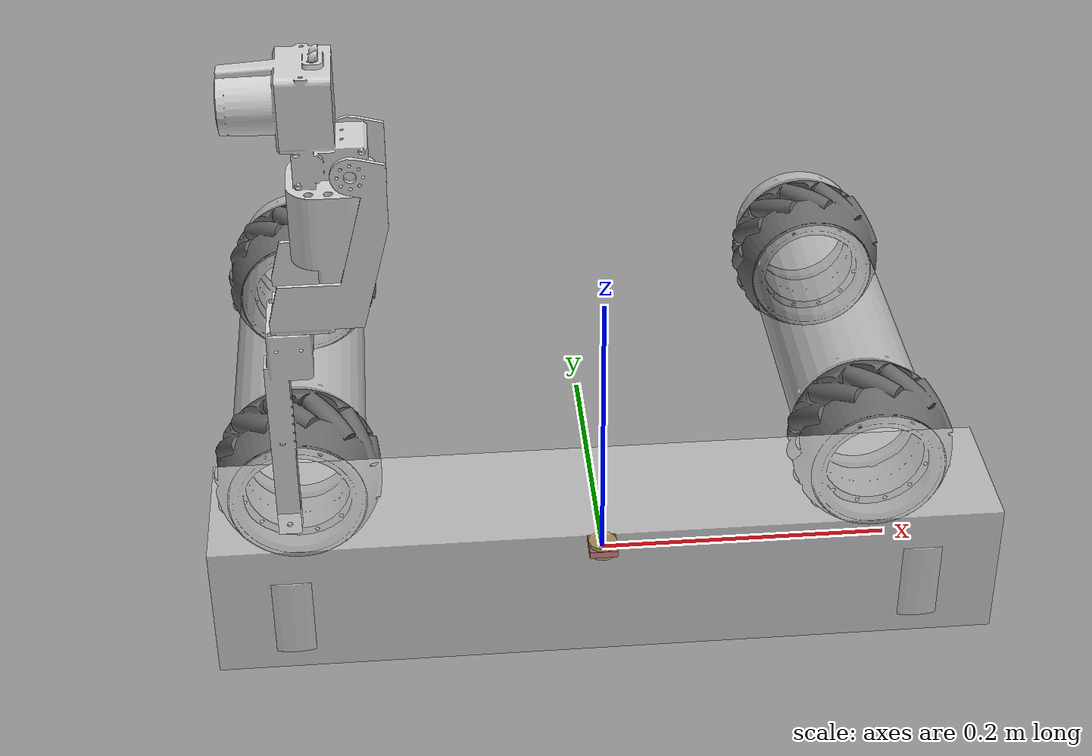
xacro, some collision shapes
<?xml version="1.0"?>
<robot xmlns:xacro="http://www.ros.org/wiki/xacro" name="mirrax">

	<!-- The following included files set up definitions of parts of the robot body -->
	<xacro:include filename="$(find mirrax_description)/urdfs/common.xacro"/>
	<xacro:include filename="$(find mirrax_description)/urdfs/materials.xacro"/>
	<!-- Base -->
	<xacro:include filename="$(find mirrax_description)/urdfs/base/base_float.xacro"/>

	<!-- Legs -->
	<xacro:include filename="$(find mirrax_description)/urdfs/leg/leg.xacro"/>

	<!-- Arms -->
	<xacro:include filename="$(find mirrax_description)/urdfs/arm/arm.xacro"/>
	<xacro:include filename="$(find mirrax_description)/urdfs/arm/linear_actuator.xacro"/>

	<!-- Sensors -->
	<xacro:include filename="$(find mirrax_description)/urdfs/sensors/sensors.xacro"/>

	<!-- generic simulator_gazebo plugins for starting mechanism control, ros time -->
	<xacro:include filename="$(find mirrax_description)/robots/gazebo.xacro"/>

	<!-- Utilise macros to build robot -->

	<!-- robot body -->
	<xacro:RobotBase name="base_link">
		<origin xyz="0 0 0" rpy="0 0 0"/>
	</xacro:RobotBase>

	<!-- robot legs -->
	<xacro:RobotLeg
		name="back"
		joint_name="joint_5"
		parent="base_link"
		joint_ulim="${back_pivot_joint_ulim}"
		joint_llim="${back_pivot_joint_llim}"
		wheel_num_l="1"
		wheel_num_r="2">
		<origin xyz="${-base_x/2} ${base_y/2} ${base_z_offset}" rpy="0 0 0"/>
	</xacro:RobotLeg>

	<xacro:RobotLeg
		name="front"
		joint_name="joint_6"
		parent="base_link"
		joint_ulim="${front_pivot_joint_ulim}"
		joint_llim="${front_pivot_joint_llim}"
		wheel_num_l="4"
		wheel_num_r="3">
		<origin xyz="${base_x/2} ${base_y/2} ${base_z_offset}" rpy="0 0 0"/>
	</xacro:RobotLeg>

	<!-- arm components -->
	<xacro:RobotArm
		name="arm"
		parent="base_link">
		<origin xyz="${-base_x/2} ${base_y/2} ${base_z_offset}" rpy="0 0 ${pi/2}"/>
	</xacro:RobotArm>

	<!-- Closed-kinematic chain of arm; excluded here for simplicity -->

	<!-- Sensors -->
	<xacro:IMU
		parent="base_link"
		imu_name="imu"
		imu_topic="/imu"
		update_rate="100">
		<origin xyz="0.0 0.0 0.0" rpy="0 0 0"/>
	</xacro:IMU>

	<xacro:LIDAR
		parent="laser"
		lidar_name="urg_lidar"
		lidar_topic="lidar/data"
		update_rate="100">
		<origin xyz="0 0 0" rpy="0 0 0"/>
	</xacro:LIDAR>

</robot>

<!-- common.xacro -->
<robot xmlns:xacro="http://www.ros.org/wiki/xacro" name="mirrax">

	<!-- NOTE: all mass and inertia related properties are inaccurate here -->

	<!-- standard distances -->
	<xacro:property name="base_x" value="0.432"/> 		<!-- distance between front & back  joints -->
	<xacro:property name="base_y" value="0.0"/> 		<!-- distance between left  & right joints -->
	<xacro:property name="base_z" value="0.0"/>
	<xacro:property name="base_z_offset" value="-0.0117"/>

	<!--  Joint parameters -->
	<xacro:property name="XM430_damping"   value="0.5" /> 					<!-- real: 0.2 		-->
	<xacro:property name="XM430_effort"    value="2.85" /> 					<!-- real: 2.85 Nm 	-->
	<xacro:property name="XM430_velocity"  value="4.0" />

	<xacro:property name="front_pivot_joint_ulim" value=" 0.1"/>
	<xacro:property name="front_pivot_joint_llim" value="-3.2"/>
	<xacro:property name="back_pivot_joint_ulim"  value=" 3.2"/>
	<xacro:property name="back_pivot_joint_llim"  value="-0.1"/>

	<xacro:property name="wheel_llim" value="${-pi}"/>
	<xacro:property name="wheel_ulim" value="${pi}"/>

	<xacro:property name="wheel_left_offset_x" value="0"/>
	<xacro:property name="wheel_left_offset_y" value="0.4005"/>
	<xacro:property name="wheel_left_offset_z" value="0"/>

	<xacro:property name="wheel_right_offset_x" value="0"/>
	<xacro:property name="wheel_right_offset_y" value="0.1215"/>
	<xacro:property name="wheel_right_offset_z" value="0"/>

	<!-- Wheel Parameters -->
	<xacro:property name="wheel_friction" value="0.0" />	<!-- Not used due to plugin for moving base -->

	<!-- Inertial values -->
	<!-- Base -->
	<xacro:property name="xcom_base" value="-0.0"/>
	<xacro:property name="ycom_base" value="0.0"/>
	<xacro:property name="zcom_base" value="0.0"/>
	<xacro:property name="m_base" 	 value="2.87"/>
	<xacro:property name="ixx_base"  value="${ (m_base/12)*(base_y*base_y + base_z*base_z) } "/>
	<xacro:property name="iyy_base"  value="${ (m_base/12)*(base_x*base_x + base_z*base_z) } "/>
	<xacro:property name="izz_base"  value="${ (m_base/12)*(base_y*base_y + base_x*base_x) } "/>
	<xacro:property name="ixy_base"  value="0.0"/>
	<xacro:property name="ixz_base"  value="0.0"/>
	<xacro:property name="iyz_base"  value="0.0"/>

	<!-- Pivot Links -->
	<xacro:property name="pivot_com_x" value="0"  />
	<xacro:property name="pivot_com_y" value="0.23"  />
	<xacro:property name="pivot_com_z" value="0"  />
	<xacro:property name="pivot_m"     value="0.3" />
	<xacro:property name="pivot_i_xx"  value="${ (pivot_m/2)*0.05*0.05 }"  />
	<xacro:property name="pivot_i_xy"  value="0.0"  />
	<xacro:property name="pivot_i_xz"  value="0.0"  />
	<xacro:property name="pivot_i_yy"  value="${ (pivot_m/12)*(3*0.05**2 + 0.35**2) } "/>
	<xacro:property name="pivot_i_yz"  value="0.0"  />
	<xacro:property name="pivot_i_zz"  value="${ (pivot_m/12)*(3*0.05**2 + 0.35**2) } "/>

	<!-- Wheel assembly -->
	<xacro:property name="wheel_com_x" value="0"  />
	<xacro:property name="wheel_com_y" value="0"  />
	<xacro:property name="wheel_com_z" value="0"  />
	<xacro:property name="wheel_m"     value="1.15" />
	<xacro:property name="wheel_i_xx"  value="${ (wheel_m/12)*(3*0.05**2 + 0.35**2) } "/>
	<xacro:property name="wheel_i_xy"  value="0"  />
	<xacro:property name="wheel_i_xz"  value="0"  />
	<xacro:property name="wheel_i_yy"  value="${ (pivot_m/2)*0.05*0.05 }"  />
	<xacro:property name="wheel_i_yz"  value="0"  />
	<xacro:property name="wheel_i_zz"  value="${ (wheel_m/12)*(3*0.05**2 + 0.35**2) } "/>

	<!-- Arm 1 assembly -->
	<xacro:property name="arm_1_l" value="0.15" />
	<xacro:property name="arm_1_w" value="0.04" />
	<xacro:property name="arm_1_d" value="0.025" />
	<xacro:property name="arm_1_cl" value="0.06" />
	<xacro:property name="arm_1_com_x" value="0.0887"  	/>
	<xacro:property name="arm_1_com_y" value="0"  		/>
	<xacro:property name="arm_1_com_z" value="0"  		/>
	<xacro:property name="arm_1_m"     value="0.076" 	/>
	<xacro:property name="arm_1_xx"  value="0.000025" />
	<xacro:property name="arm_1_xy"  value="0"  		/>
	<xacro:property name="arm_1_xz"  value="0"  		/>
	<xacro:property name="arm_1_yy"  value="0.000105" />
	<xacro:property name="arm_1_yz"  value="0"  		/>
	<xacro:property name="arm_1_zz"  value="0.000117"  />

	<!-- Arm 2 assembly -->
	<xacro:property name="arm_2_l" value="0.15" />
	<xacro:property name="arm_2_w" value="0.04" />
	<xacro:property name="arm_2_d" value="0.025" />
	<xacro:property name="arm_2_cl" value="0.06" />
	<xacro:property name="arm_2_com_x" value="0.0887"  	/>
	<xacro:property name="arm_2_com_y" value="0"  		/>
	<xacro:property name="arm_2_com_z" value="0"  		/>
	<xacro:property name="arm_2_m"     value="0.076" 	/>
	<xacro:property name="arm_2_xx"  value="0.000025" />
	<xacro:property name="arm_2_xy"  value="0"  		/>
	<xacro:property name="arm_2_xz"  value="0"  		/>
	<xacro:property name="arm_2_yy"  value="0.000105" />
	<xacro:property name="arm_2_yz"  value="0"  		/>
	<xacro:property name="arm_2_zz"  value="0.000117"  />

	<!-- Arm 3 assembly -->
	<xacro:property name="arm_3_l" value="0.15" />
	<xacro:property name="arm_3_w" value="0.04" />
	<xacro:property name="arm_3_d" value="0.025" />
	<xacro:property name="arm_3_cl" value="0.06" />
	<xacro:property name="arm_3_com_x" value="0.0887"  	/>
	<xacro:property name="arm_3_com_y" value="0"  		/>
	<xacro:property name="arm_3_com_z" value="0"  		/>
	<xacro:property name="arm_3_m"     value="0.076" 	/>
	<xacro:property name="arm_3_xx"  value="0.000025" />
	<xacro:property name="arm_3_xy"  value="0"  		/>
	<xacro:property name="arm_3_xz"  value="0"  		/>
	<xacro:property name="arm_3_yy"  value="0.000105" />
	<xacro:property name="arm_3_yz"  value="0"  		/>
	<xacro:property name="arm_3_zz"  value="0.000117"  />

  <!-- RGB for links -->
	<xacro:property name="light_grey" value="0.8" />
	<xacro:property name="dark_grey" value="0.1" />
	<xacro:property name="alpha" value="1.0"/>

</robot>

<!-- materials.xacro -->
<robot>

  <material name="black">
    <color rgba="0.0 0.0 0.0 1.0"/>
  </material>

  <material name="blue">
    <color rgba="0.0 0.0 0.8 1.0"/>
  </material>

  <material name="brown">
    <color rgba="${222/255} ${207/255} ${195/255} 1.0"/>
  </material>

  <material name="colli">
    <color rgba="${255/255} ${108/255} ${10/255} 0.7" />
  </material>

  <material name="green">
    <color rgba="0.0 0.8 0.0 1.0"/>
  </material>

  <material name="grey">
    <color rgba="0.2 0.2 0.2 1.0"/>
  </material>

  <material name="grey1">
    <color rgba="${224/255} ${224/255} ${224/255} 1.0"/>
  </material>

  <material name="orange">
    <color rgba="${255/255} ${108/255} ${10/255} 1.0"/>
  </material>

  <material name="red">
    <color rgba="0.8 0.0 0.0 1.0"/>
  </material>

  <material name="transparent">
    <color rgba="0 0 0 0" />
  </material>

  <material name="turquoise">
    <color rgba="0 ${206/255} ${209/255} 1.0" />
  </material>

  <material name="white">
    <color rgba="1.0 1.0 1.0 1.0"/>
  </material>

  <material name="yellow">
    <color rgba="1 1 0 1" />
  </material>

</robot>

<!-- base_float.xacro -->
<robot xmlns:xacro="http://www.ros.org/wiki/xacro" name="mirrax">

	<!-- Things that are needed only for Gazebo (not the physical robot).
			 These include sensor and controller plugin specifications -->
	<xacro:include filename="$(find mirrax_description)/urdfs/base/base.gazebo.xacro"/>

	<!-- ================================ Base ================================ -->

	<xacro:macro name="RobotBase" params="name *origin">
		<!-- Floating base Joint -->
		<joint name="floating_base" type="fixed">
			<axis xyz="0 0 1"/>
			<!-- origin remains zero as body_dummy same dimensions as body -->
			<xacro:insert_block name="origin"/>
			<parent link="floating_base"/>
			<child link="${name}"/>
		</joint>

		<!-- Floating base Link  -->
		<link name="floating_base">
			<visual>
				<geometry>
					<cylinder length="0.01" radius="0.01"/>
				</geometry>
			</visual>
		</link>

		<!-- Base link -->
		<link name="${name}">
			<visual>
				<geometry>
					<mesh filename="package://mirrax_description/meshes/BodyRVIZ.STL"/>
				</geometry>
				<material name="LightGrey">
					<color rgba="${light_grey} ${light_grey} ${light_grey} 0.7"/>
				</material>
			</visual>

			<inertial>
				<origin xyz="${xcom_base} ${ycom_base} ${zcom_base}"/>
				<mass value="${m_base}"/>
				<inertia ixx="${ixx_base}" iyy="${iyy_base}" izz="${izz_base}"
						 ixy="${ixy_base}" ixz="${ixz_base}" iyz="${iyz_base}"/>
			</inertial>

			<collision>
				<origin xyz="0 0 0" rpy="0 0 0"/>
				<geometry>
					<box size="0.54 0.1 0.1"/>
				</geometry>
				<material name="colli"/>
			</collision>
		</link>

		<!-- Extensions -->
		<xacro:base_gazebo name="base_link"/>

	</xacro:macro>

</robot>

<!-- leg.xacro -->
<robot xmlns:xacro="http://www.ros.org/wiki/xacro" name="mirrax">
  <!-- Things that are needed only for Gazebo (not the physical robot). These include sensor and controller plugin specifications -->
  <xacro:include filename="$(find mirrax_description)/urdfs/leg/leg.transmission.xacro"/>
  <xacro:include filename="$(find mirrax_description)/urdfs/leg/leg.gazebo.xacro"/>
  <!-- ================================== Leg ================================== -->
  <!-- The xacro macro contains: pivot and leg link -->
  <xacro:macro name="RobotLeg" params="name joint_name parent joint_ulim joint_llim wheel_num_l wheel_num_r *origin">
    <!-- Joints -->
    <!-- Pivot joint -->
    <joint name="${joint_name}" type="revolute">
      <xacro:insert_block name="origin"/>
      <parent link="${parent}"/>
      <child  link="${name}_leg"/>
      <axis xyz="0 0 1"/>
      <dynamics damping="${XM430_damping}" friction="0" />
      <limit effort="${XM430_effort}" velocity="${XM430_velocity}" lower="${joint_llim}" upper="${joint_ulim}"/>
    </joint>

    <!-- Wheel joint left -->
    <joint name="wheel_${wheel_num_l}" type="continuous">
      <origin xyz="${wheel_left_offset_x} ${wheel_left_offset_y} ${wheel_left_offset_z}" rpy="0 0 0"/>
      <parent link="${name}_leg"/>
      <child  link="wheel_${wheel_num_l}"/>
      <axis xyz="0 1 0 "/>
      <dynamics damping="${XM430_damping}" friction="0" />
      <limit effort="${XM430_effort}" velocity="${XM430_velocity}"/>
    </joint>

    <!-- Wheel joint right -->
    <joint name="wheel_${wheel_num_r}" type="continuous">
      <origin xyz="${wheel_right_offset_x} ${wheel_right_offset_y} ${wheel_right_offset_z}" rpy="0 0 0"/>
      <parent link="${name}_leg"/>
      <child  link="wheel_${wheel_num_r}"/>
      <axis xyz="0 1 0 "/>
      <dynamics damping="${XM430_damping}" friction="0" />
      <limit effort="${XM430_effort}" velocity="${XM430_velocity}"/>
    </joint>

    <!-- Links -->
    <!-- Pivot link -->
    <link name="${name}_leg">
      <visual>
        <geometry>
          <mesh filename="package://mirrax_description/meshes/LegRVIZ.STL" scale="1 1 1"/>
        </geometry>
        <material name="LightGrey">
          <color rgba="${light_grey} ${light_grey} ${light_grey} 0.7"/>
        </material>
      </visual>
      <collision>
        <origin xyz="0 0.28 0" rpy="${pi/2} 0 0 "/>
        <geometry>
          <cylinder length="0.35" radius="0.05"/>
        </geometry>
        <material name="colli"/>
      </collision>
      <inertial>
        <origin xyz="${pivot_com_x} ${pivot_com_y} ${pivot_com_z}" rpy="0 0 ${pi/2}" />
        <mass value="${pivot_m}"/>
        <inertia ixx="${pivot_i_xx}" ixy="${pivot_i_xy}" ixz="${pivot_i_xz}" iyy="${pivot_i_yy}" iyz="${pivot_i_yz}" izz="${pivot_i_zz}"/>
      </inertial>
    </link>

    <!-- Wheel link -->
    <xacro:WheelLink name="${wheel_num_l}"> </xacro:WheelLink>
    <xacro:WheelLink name="${wheel_num_r}"> </xacro:WheelLink>

    <!-- Extensions -->
    <xacro:leg_transmission name="${name}" joint_name="${joint_name}" wheel_num_l="${wheel_num_l}" wheel_num_r="${wheel_num_r}"/>
    <xacro:leg_gazebo name="${name}" joint_name="${joint_name}" wheel_num_l="${wheel_num_l}" wheel_num_r="${wheel_num_r}"/>
  </xacro:macro>

	<!-- The xacro macro contains: wheel link -->
  <xacro:macro name="WheelLink" params="name">
    <link name="wheel_${name}">
      <visual>
        <origin rpy="0 0 0" xyz="0 0 0"/>
        <geometry>
          <mesh filename="package://mirrax_description/meshes/Wheel2RVIZ.STL"/>
        </geometry>
        <material name="DarkGrey">
          <color rgba="0.4 0.4 0.4 1"/>
        </material>
      </visual>
      <collision>
        <origin rpy="${pi/2} 0 0" xyz="0 0 0"/>
        <geometry>
          <cylinder radius="${0.124/2}" length="0.072"/>
        </geometry>
        <material name="colli"/>
      </collision>
      <inertial>
        <origin xyz="${wheel_com_x} ${wheel_com_y} ${wheel_com_z}"/>
        <mass value="${wheel_m}"/>
        <inertia ixx="${wheel_i_xx}" ixy="${wheel_i_xy}" ixz="${wheel_i_xz}" iyy="${wheel_i_yy}" iyz="${wheel_i_yz}" izz="${wheel_i_zz}"/>
      </inertial>
    </link>
  </xacro:macro>
</robot>

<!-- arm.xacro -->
<robot xmlns:xacro="http://www.ros.org/wiki/xacro" name="mirrax">
  <!-- Things that are needed only for Gazebo (not the physical robot). These include sensor and controller plugin specifications -->
  <xacro:include filename="$(find mirrax_description)/urdfs/arm/arm.transmission.xacro"/>
  <xacro:include filename="$(find mirrax_description)/urdfs/arm/arm.gazebo.xacro"/>

  <!-- ================================== Arm ================================== -->
  <xacro:macro name="RobotArm" params="name parent *origin">
    <!-- ========================= Joints ========================= -->
    <!-- Arm Pivot Joint -->
    <joint name="joint_9" type="revolute">
      <axis xyz="0 1 0"/>
      <dynamics damping="${XM430_damping}" friction="0" />
      <limit effort="${XM430_effort}" velocity="${XM430_velocity}" lower="0" upper="1.57"/>
      <parent link="${parent}"/>
      <child link="${name}_1"/>
      <origin xyz="-0.216 0 0.04063" rpy="0 0 0"/>
    </joint>

    <!-- Arm Yaw Joint -->
    <joint name="joint_7" type="revolute">
      <axis xyz="0 0 1"/>
      <dynamics damping="${XM430_damping}" friction="0" />
      <limit effort="${XM430_effort}" velocity="${XM430_velocity}" lower="-3.14" upper="3.14"/>
      <parent link="${name}_1"/>
      <child link="${name}_2"/>
      <origin xyz="0.01049 -0.012 0.166" rpy="0 0 0"/>
    </joint>

    <!-- Arm Pitch Joint -->
    <joint name="joint_8" type="revolute">
      <axis xyz="0 -1 0"/>
      <dynamics damping="${XM430_damping}" friction="0" />
      <limit effort="${XM430_effort}" velocity="${XM430_velocity}" lower="-2.891598911" upper="0"/>
      <parent link="${name}_2"/>
      <child link="${name}_3"/>
      <origin xyz="0.04616 0.012 0.11318" rpy="0 0 0"/>
    </joint>

    <!-- Laser -->
    <joint name="laser_joint" type="fixed">
      <parent link="${name}_3"/>
      <child link="laser"/>
      <origin xyz="-0.05523 0 0.03925" rpy="0 1.5708 -3.1415926 "/>
    </joint>

    <!-- ========================= Links ========================= -->
    <!-- Arm bottom link -->
    <link name="${name}_1">
      <visual>
        <geometry>
          <mesh filename="package://mirrax_description/meshes/arm1RVIZ.STL"/>
        </geometry>
        <material name="LightGrey">
          <color rgba="${light_grey} ${light_grey} ${light_grey} ${alpha}"/>
        </material>
        <origin rpy="0 0 0" xyz="0 0 0"/>
      </visual>
      <collision>
        <origin xyz="0 0 0" rpy="0 0 0"/>
        <geometry>
          <mesh filename="package://mirrax_description/meshes/arm1RVIZ.STL"/>
        </geometry>
        <material name="colli"/>
      </collision>
      <inertial>
        <origin xyz="${arm_1_com_x} ${arm_1_com_y} ${arm_1_com_z}"/>
        <mass value="${arm_1_m}"/>
        <inertia ixx="${arm_1_xx}" ixy="${arm_1_xy}" ixz="${arm_1_xz}" iyy="${arm_1_yy}" iyz="${arm_1_yz}" izz="${arm_1_zz}"/>
      </inertial>
    </link>

    <!-- Arm middle link -->
    <link name="${name}_2">
      <visual>
        <geometry>
          <mesh filename="package://mirrax_description/meshes/arm2RVIZ.STL"/>
        </geometry>
        <material name="LightGrey">
          <color rgba="${light_grey} ${light_grey} ${light_grey} ${alpha}"/>
        </material>
        <origin rpy="0 0 0" xyz="0 0 0"/>
      </visual>
      <collision>
        <origin xyz="0 0 0" rpy="0 0 0"/>
        <geometry>
          <mesh filename="package://mirrax_description/meshes/arm2RVIZ.STL"/>
        </geometry>
        <material name="colli"/>
      </collision>
      <inertial>
        <origin xyz="${arm_2_com_x} ${arm_2_com_y} ${arm_2_com_z}"/>
        <mass value="${arm_2_m}"/>
        <inertia ixx="${arm_2_xx}" ixy="${arm_2_xy}" ixz="${arm_2_xz}" iyy="${arm_2_yy}" iyz="${arm_2_yz}" izz="${arm_2_zz}"/>
      </inertial>
    </link>

    <!-- Arm top link -->
    <link name="${name}_3">
      <visual>
        <geometry>
          <mesh filename="package://mirrax_description/meshes/arm3RVIZ.STL"/>
        </geometry>
        <material name="LightGrey">
          <color rgba="${light_grey} ${light_grey} ${light_grey} ${alpha}"/>
        </material>
        <origin rpy="0 0 0" xyz="0 0 0"/>
      </visual>
      <collision>
        <origin xyz="0 0 0" rpy="0 0 0"/>
        <geometry>
          <mesh filename="package://mirrax_description/meshes/arm3RVIZ.STL"/>
        </geometry>
        <material name="colli"/>
      </collision>
      <inertial>
        <origin xyz="${arm_3_com_x} ${arm_3_com_y} ${arm_3_com_z}"/>
        <mass value="${arm_3_m}"/>
        <inertia ixx="${arm_3_xx}" ixy="${arm_3_xy}" ixz="${arm_3_xz}" iyy="${arm_3_yy}" iyz="${arm_3_yz}" izz="${arm_3_zz}"/>
      </inertial>
    </link>

    <!-- Laser link -->
    <link name="laser"/>

    <!-- ========================= Extensions ========================= -->
    <xacro:arm_gazebo name="${name}"/>
    <xacro:arm_transmission name="${name}"/>
  </xacro:macro>
</robot>

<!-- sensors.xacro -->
<robot xmlns:xacro="http://www.ros.org/wiki/xacro" name="mirrax">
  <xacro:include filename="$(find mirrax_description)/urdfs/sensors/imu.xacro"/>
  <xacro:include filename="$(find mirrax_description)/urdfs/sensors/lidar2D.xacro"/>
  <xacro:include filename="$(find mirrax_description)/urdfs/sensors/rgb_camera.xacro"/>
  <xacro:include filename="$(find mirrax_description)/urdfs/sensors/depth_camera.xacro"/>
</robot>

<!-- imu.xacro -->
<robot xmlns:xacro="http://www.ros.org/wiki/xacro" name="mirrax">

	<!-- #############  IMU Sensor  ############# -->
	<xacro:macro name="IMU" params="parent imu_name imu_topic update_rate *origin">
		<!-- Joint -->
		<joint name="${imu_name}_joint" type="fixed">
			<xacro:insert_block name="origin"/>
			<parent link="${parent}" />
			<child link="${imu_name}_link"/>
		</joint>

		<!-- Link -->
		<link name="${imu_name}_link">
			<inertial>
				<origin xyz="0 0 0"/>
				<mass value="0.010"/>
				<inertia ixx="0.0" iyy="0.0" izz="0.0" ixy="0.0" ixz="0.0" iyz="0.0"/>
			</inertial>
			<visual>
				<origin xyz="0.0 0 0.0" rpy="0 0 0"/>
				<geometry>
					<box size="0.02 0.02 0.005" />
				</geometry>
				<material name="red">
					<color rgba="1 0 0 0.9"/>
				</material>
			</visual>
		</link>

		<gazebo reference="${imu_name}_link">
			<material>Gazebo/Red</material>
			<gravity>true</gravity>
			<sensor name="imu_sensor" type="imu">
				<pose>0 0 0 0 0 0</pose>
				<always_on>true</always_on>
				<update_rate>${update_rate}</update_rate>
				<visualize>true</visualize>
				<topic>__default_topic__</topic>
				<plugin filename="libgazebo_ros_imu_sensor.so" name="imu_plugin">
					<topicName>${imu_topic}</topicName>
					<bodyName>${imu_name}_link</bodyName>
					<frameName>${imu_name}_link</frameName>
					<updateRateHZ>${update_rate}</updateRateHZ>
					<gaussianNoise>0.0</gaussianNoise>
					<xyzOffset>0 0 0</xyzOffset>
					<rpyOffset>0 0 0</rpyOffset>
				</plugin>
			</sensor>
		</gazebo>
	</xacro:macro>

</robot>

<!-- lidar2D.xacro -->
<robot xmlns:xacro="http://www.ros.org/wiki/xacro" name="mirrax">
  <!-- #############  Laser Sensor  ############# -->
  <!-- Noise parameters based on published spec for Hokuyo laser achieving "+-30mm" accuracy at range < 10m. -->
  <!-- A mean of 0.0m and stddev of 0.01m will put 99.7% of samples within 0.03m of the true reading. -->
  <xacro:macro name="LIDAR" params="parent lidar_name lidar_topic update_rate *origin">
    <!-- Joint -->
    <joint name="${lidar_name}_joint" type="fixed">
      <xacro:insert_block name="origin"/>
      <parent link="${parent}" />
      <child link="${lidar_name}"/>
    </joint>
    <!-- Link -->
    <link name="${lidar_name}">
      <inertial>
        <origin xyz="-0.00020  0.00010  0.00110"/>
        <mass value="0.010"/>
        <inertia ixx="0.0" iyy="0.0" izz="0.0" ixy="0.0" ixz="0.0" iyz="0.0"/>
      </inertial>
      <visual>
        <origin xyz="0.0 0 0.0" rpy="0 0 0"/>
        <geometry>
          <cylinder length="0.01" radius="0.01"/>
        </geometry>
        <material name="black">
          <color rgba="0 0 0 0.9"/>
        </material>
      </visual>
    </link>
    <gazebo reference="${lidar_name}">
      <material>Gazebo/Blue</material>
      <sensor type="ray" name="head_hokuyo_sensor">
        <pose>0 0 0 0 0 0</pose>
        <visualize>false</visualize>
        <update_rate>${update_rate}</update_rate>
        <ray>
          <scan>
            <horizontal>
              <samples>683</samples>
              <!-- Scan_range/angular_resolution -->
              <resolution>1</resolution>
              <min_angle>-2.1</min_angle>
              <max_angle>2.1</max_angle>
            </horizontal>
          </scan>
          <range>
            <min>0.06</min>
            <max>4.0</max>
            <resolution>0.001</resolution>
          </range>
          <noise>
            <type>none</type>
            <mean>0.0</mean>
            <stddev>0.0</stddev>
          </noise>
        </ray>
        <plugin name="gazebo_ros_head_hokuyo_controller" filename="libgazebo_ros_laser.so">
          <alwaysOn>true</alwaysOn>
          <update_rate>${update_rate}</update_rate>
          <topicName>${lidar_topic}</topicName>
          <frameName>${lidar_name}</frameName>
          <bodyName>${lidar_name}</bodyName>
        </plugin>
      </sensor>
    </gazebo>
  </xacro:macro>
</robot>
